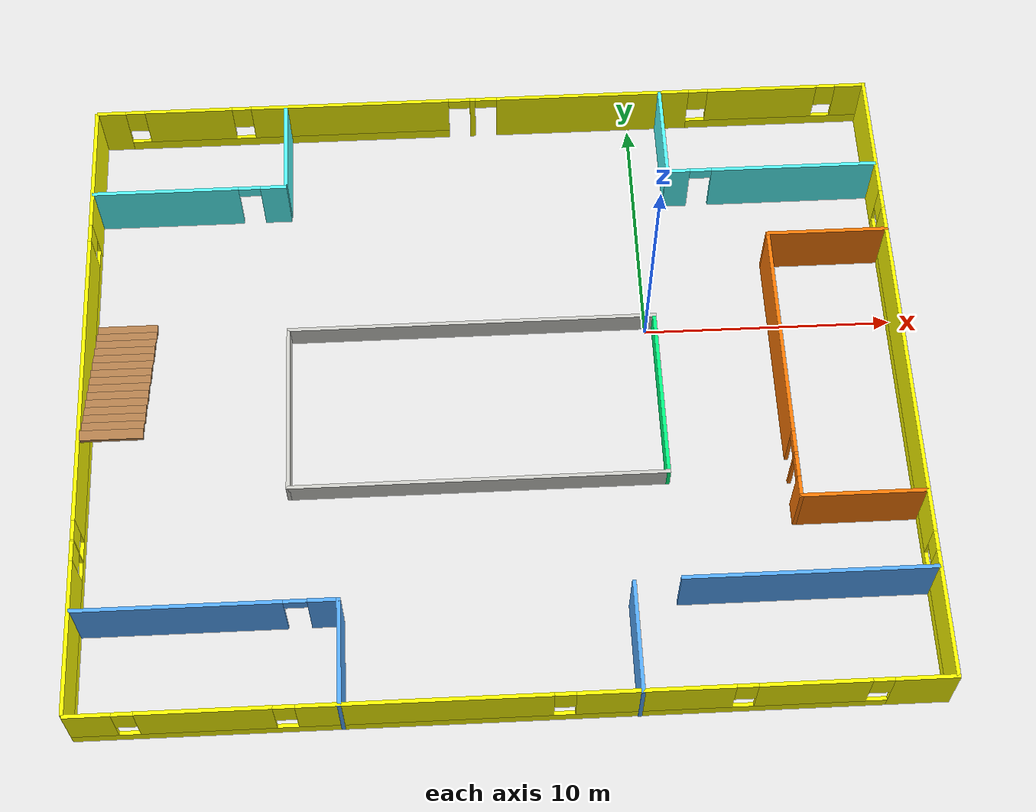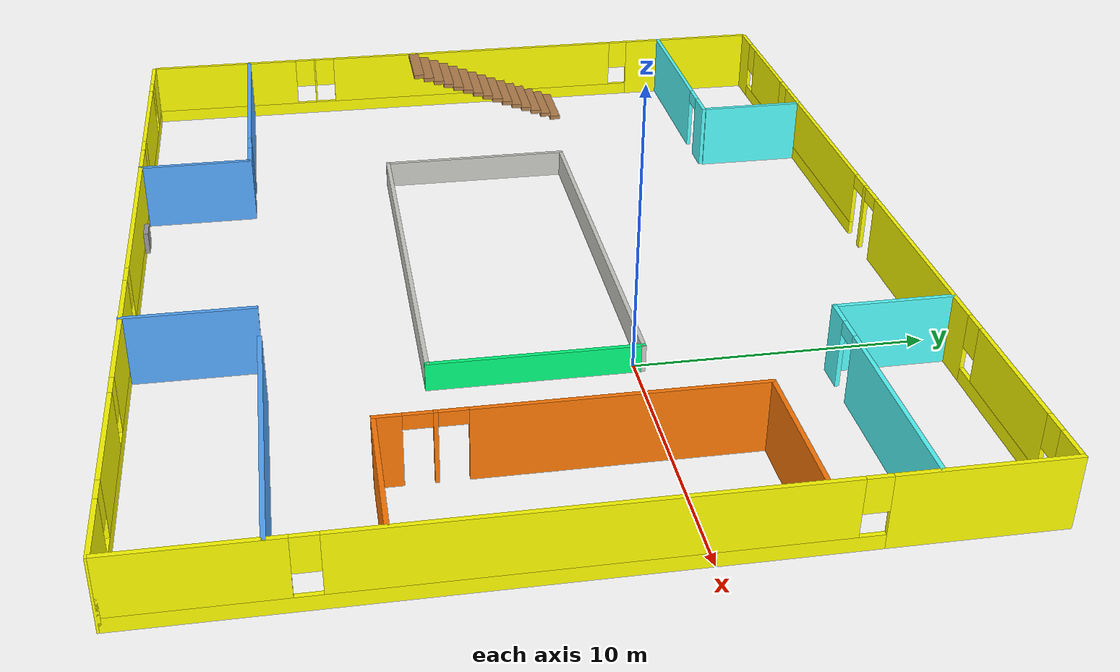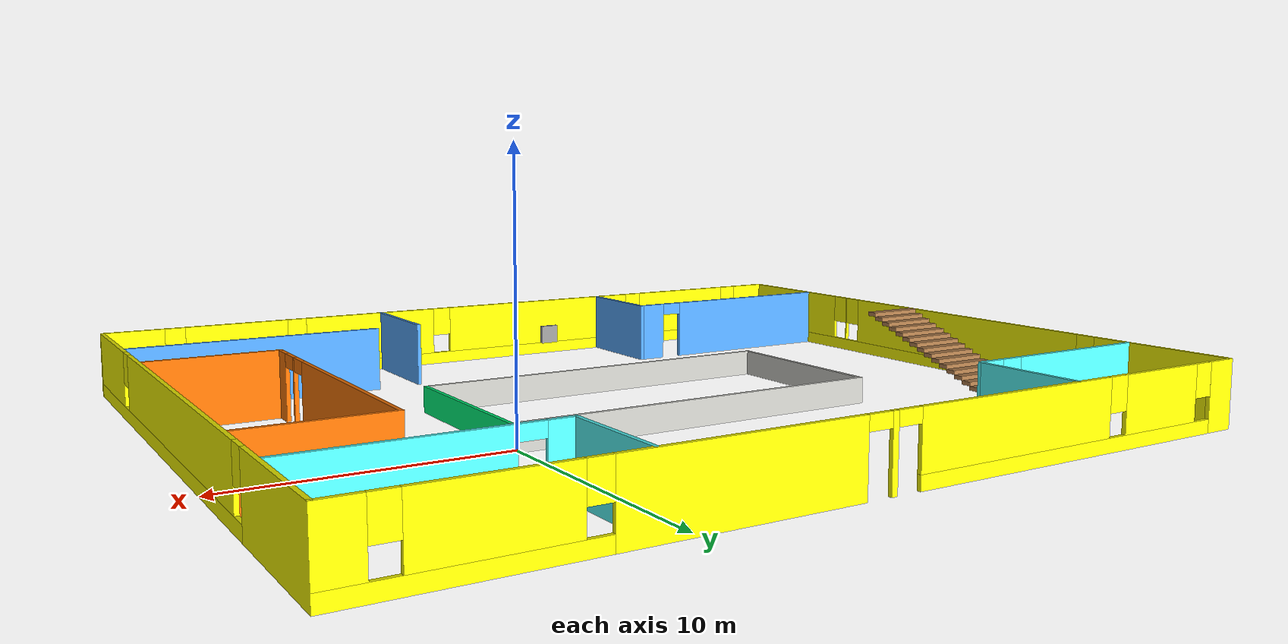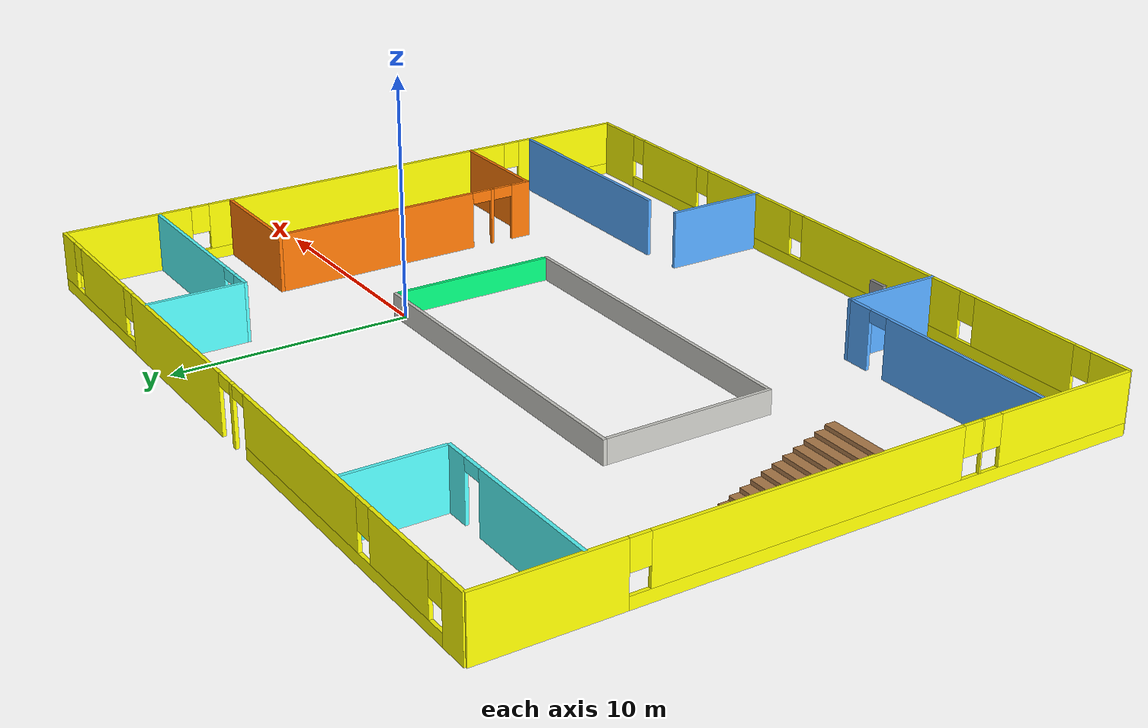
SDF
<?xml version='1.0'?>
<sdf version='1.6'>
  <model name='Building'>
    <pose frame=''>-6.26439 -3.05655 0 0 -0 0</pose>
    <link name='Stairs_0'>
      <visual name='Stairs_0_Visual_0'>
        <pose frame=''>-14.9313 4.06406 0.083333 0 -0 0</pose>
        <geometry>
          <box>
            <size>2.46916 0.429222 0.166667</size>
          </box>
        </geometry>
        <material>
          <script>
            <uri>file://media/materials/scripts/gazebo.material</uri>
            <name>Gazebo/Wood</name>
          </script>
          <ambient>1 1 1 1</ambient>
        </material>
        <meta>
          <layer>0</layer>
        </meta>
      </visual>
      <collision name='Stairs_0_Collision_0'>
        <geometry>
          <box>
            <size>2.46916 0.429222 0.166667</size>
          </box>
        </geometry>
        <pose frame=''>-14.9313 4.06406 0.083333 0 -0 0</pose>
      </collision>
      <visual name='Stairs_0_Visual_1'>
        <pose frame=''>-14.9313 3.63484 0.25 0 -0 0</pose>
        <geometry>
          <box>
            <size>2.46916 0.429222 0.166667</size>
          </box>
        </geometry>
        <material>
          <script>
            <uri>file://media/materials/scripts/gazebo.material</uri>
            <name>Gazebo/Wood</name>
          </script>
          <ambient>1 1 1 1</ambient>
        </material>
        <meta>
          <layer>0</layer>
        </meta>
      </visual>
      <collision name='Stairs_0_Collision_1'>
        <geometry>
          <box>
            <size>2.46916 0.429222 0.166667</size>
          </box>
        </geometry>
        <pose frame=''>-14.9313 3.63484 0.25 0 -0 0</pose>
      </collision>
      <visual name='Stairs_0_Visual_2'>
        <pose frame=''>-14.9313 3.20562 0.416667 0 -0 0</pose>
        <geometry>
          <box>
            <size>2.46916 0.429222 0.166667</size>
          </box>
        </geometry>
        <material>
          <script>
            <uri>file://media/materials/scripts/gazebo.material</uri>
            <name>Gazebo/Wood</name>
          </script>
          <ambient>1 1 1 1</ambient>
        </material>
        <meta>
          <layer>0</layer>
        </meta>
      </visual>
      <collision name='Stairs_0_Collision_2'>
        <geometry>
          <box>
            <size>2.46916 0.429222 0.166667</size>
          </box>
        </geometry>
        <pose frame=''>-14.9313 3.20562 0.416667 0 -0 0</pose>
      </collision>
      <visual name='Stairs_0_Visual_3'>
        <pose frame=''>-14.9313 2.7764 0.583333 0 -0 0</pose>
        <geometry>
          <box>
            <size>2.46916 0.429222 0.166667</size>
          </box>
        </geometry>
        <material>
          <script>
            <uri>file://media/materials/scripts/gazebo.material</uri>
            <name>Gazebo/Wood</name>
          </script>
          <ambient>1 1 1 1</ambient>
        </material>
        <meta>
          <layer>0</layer>
        </meta>
      </visual>
      <collision name='Stairs_0_Collision_3'>
        <geometry>
          <box>
            <size>2.46916 0.429222 0.166667</size>
          </box>
        </geometry>
        <pose frame=''>-14.9313 2.7764 0.583333 0 -0 0</pose>
      </collision>
      <visual name='Stairs_0_Visual_4'>
        <pose frame=''>-14.9313 2.34718 0.75 0 -0 0</pose>
        <geometry>
          <box>
            <size>2.46916 0.429222 0.166667</size>
          </box>
        </geometry>
        <material>
          <script>
            <uri>file://media/materials/scripts/gazebo.material</uri>
            <name>Gazebo/Wood</name>
          </script>
          <ambient>1 1 1 1</ambient>
        </material>
        <meta>
          <layer>0</layer>
        </meta>
      </visual>
      <collision name='Stairs_0_Collision_4'>
        <geometry>
          <box>
            <size>2.46916 0.429222 0.166667</size>
          </box>
        </geometry>
        <pose frame=''>-14.9313 2.34718 0.75 0 -0 0</pose>
      </collision>
      <visual name='Stairs_0_Visual_5'>
        <pose frame=''>-14.9313 1.91795 0.916667 0 -0 0</pose>
        <geometry>
          <box>
            <size>2.46916 0.429222 0.166667</size>
          </box>
        </geometry>
        <material>
          <script>
            <uri>file://media/materials/scripts/gazebo.material</uri>
            <name>Gazebo/Wood</name>
          </script>
          <ambient>1 1 1 1</ambient>
        </material>
        <meta>
          <layer>0</layer>
        </meta>
      </visual>
      <collision name='Stairs_0_Collision_5'>
        <geometry>
          <box>
            <size>2.46916 0.429222 0.166667</size>
          </box>
        </geometry>
        <pose frame=''>-14.9313 1.91795 0.916667 0 -0 0</pose>
      </collision>
      <visual name='Stairs_0_Visual_6'>
        <pose frame=''>-14.9313 1.48873 1.08333 0 -0 0</pose>
        <geometry>
          <box>
            <size>2.46916 0.429222 0.166667</size>
          </box>
        </geometry>
        <material>
          <script>
            <uri>file://media/materials/scripts/gazebo.material</uri>
            <name>Gazebo/Wood</name>
          </script>
          <ambient>1 1 1 1</ambient>
        </material>
        <meta>
          <layer>0</layer>
        </meta>
      </visual>
      <collision name='Stairs_0_Collision_6'>
        <geometry>
          <box>
            <size>2.46916 0.429222 0.166667</size>
          </box>
        </geometry>
        <pose frame=''>-14.9313 1.48873 1.08333 0 -0 0</pose>
      </collision>
      <visual name='Stairs_0_Visual_7'>
        <pose frame=''>-14.9313 1.05951 1.25 0 -0 0</pose>
        <geometry>
          <box>
            <size>2.46916 0.429222 0.166667</size>
          </box>
        </geometry>
        <material>
          <script>
            <uri>file://media/materials/scripts/gazebo.material</uri>
            <name>Gazebo/Wood</name>
          </script>
          <ambient>1 1 1 1</ambient>
        </material>
        <meta>
          <layer>0</layer>
        </meta>
      </visual>
      <collision name='Stairs_0_Collision_7'>
        <geometry>
          <box>
            <size>2.46916 0.429222 0.166667</size>
          </box>
        </geometry>
        <pose frame=''>-14.9313 1.05951 1.25 0 -0 0</pose>
      </collision>
      <visual name='Stairs_0_Visual_8'>
        <pose frame=''>-14.9313 0.630288 1.41667 0 -0 0</pose>
        <geometry>
          <box>
            <size>2.46916 0.429222 0.166667</size>
          </box>
        </geometry>
        <material>
          <script>
            <uri>file://media/materials/scripts/gazebo.material</uri>
            <name>Gazebo/Wood</name>
          </script>
          <ambient>1 1 1 1</ambient>
        </material>
        <meta>
          <layer>0</layer>
        </meta>
      </visual>
      <collision name='Stairs_0_Collision_8'>
        <geometry>
          <box>
            <size>2.46916 0.429222 0.166667</size>
          </box>
        </geometry>
        <pose frame=''>-14.9313 0.630288 1.41667 0 -0 0</pose>
      </collision>
      <visual name='Stairs_0_Visual_9'>
        <pose frame=''>-14.9313 0.201066 1.58333 0 -0 0</pose>
        <geometry>
          <box>
            <size>2.46916 0.429222 0.166667</size>
          </box>
        </geometry>
        <material>
          <script>
            <uri>file://media/materials/scripts/gazebo.material</uri>
            <name>Gazebo/Wood</name>
          </script>
          <ambient>1 1 1 1</ambient>
        </material>
        <meta>
          <layer>0</layer>
        </meta>
      </visual>
      <collision name='Stairs_0_Collision_9'>
        <geometry>
          <box>
            <size>2.46916 0.429222 0.166667</size>
          </box>
        </geometry>
        <pose frame=''>-14.9313 0.201066 1.58333 0 -0 0</pose>
      </collision>
      <visual name='Stairs_0_Visual_10'>
        <pose frame=''>-14.9313 -0.228156 1.75 0 -0 0</pose>
        <geometry>
          <box>
            <size>2.46916 0.429222 0.166667</size>
          </box>
        </geometry>
        <material>
          <script>
            <uri>file://media/materials/scripts/gazebo.material</uri>
            <name>Gazebo/Wood</name>
          </script>
          <ambient>1 1 1 1</ambient>
        </material>
        <meta>
          <layer>0</layer>
        </meta>
      </visual>
      <collision name='Stairs_0_Collision_10'>
        <geometry>
          <box>
            <size>2.46916 0.429222 0.166667</size>
          </box>
        </geometry>
        <pose frame=''>-14.9313 -0.228156 1.75 0 -0 0</pose>
      </collision>
      <visual name='Stairs_0_Visual_11'>
        <pose frame=''>-14.9313 -0.657378 1.91667 0 -0 0</pose>
        <geometry>
          <box>
            <size>2.46916 0.429222 0.166667</size>
          </box>
        </geometry>
        <material>
          <script>
            <uri>file://media/materials/scripts/gazebo.material</uri>
            <name>Gazebo/Wood</name>
          </script>
          <ambient>1 1 1 1</ambient>
        </material>
        <meta>
          <layer>0</layer>
        </meta>
      </visual>
      <collision name='Stairs_0_Collision_11'>
        <geometry>
          <box>
            <size>2.46916 0.429222 0.166667</size>
          </box>
        </geometry>
        <pose frame=''>-14.9313 -0.657378 1.91667 0 -0 0</pose>
      </collision>
      <visual name='Stairs_0_Visual_12'>
        <pose frame=''>-14.9313 -1.0866 2.08333 0 -0 0</pose>
        <geometry>
          <box>
            <size>2.46916 0.429222 0.166667</size>
          </box>
        </geometry>
        <material>
          <script>
            <uri>file://media/materials/scripts/gazebo.material</uri>
            <name>Gazebo/Wood</name>
          </script>
          <ambient>1 1 1 1</ambient>
        </material>
        <meta>
          <layer>0</layer>
        </meta>
      </visual>
      <collision name='Stairs_0_Collision_12'>
        <geometry>
          <box>
            <size>2.46916 0.429222 0.166667</size>
          </box>
        </geometry>
        <pose frame=''>-14.9313 -1.0866 2.08333 0 -0 0</pose>
      </collision>
      <visual name='Stairs_0_Visual_13'>
        <pose frame=''>-14.9313 -1.51582 2.25 0 -0 0</pose>
        <geometry>
          <box>
            <size>2.46916 0.429222 0.166667</size>
          </box>
        </geometry>
        <material>
          <script>
            <uri>file://media/materials/scripts/gazebo.material</uri>
            <name>Gazebo/Wood</name>
          </script>
          <ambient>1 1 1 1</ambient>
        </material>
        <meta>
          <layer>0</layer>
        </meta>
      </visual>
      <collision name='Stairs_0_Collision_13'>
        <geometry>
          <box>
            <size>2.46916 0.429222 0.166667</size>
          </box>
        </geometry>
        <pose frame=''>-14.9313 -1.51582 2.25 0 -0 0</pose>
      </collision>
      <visual name='Stairs_0_Visual_14'>
        <pose frame=''>-14.9313 -1.94504 2.41667 0 -0 0</pose>
        <geometry>
          <box>
            <size>2.46916 0.429222 0.166667</size>
          </box>
        </geometry>
        <material>
          <script>
            <uri>file://media/materials/scripts/gazebo.material</uri>
            <name>Gazebo/Wood</name>
          </script>
          <ambient>1 1 1 1</ambient>
        </material>
        <meta>
          <layer>0</layer>
        </meta>
      </visual>
      <collision name='Stairs_0_Collision_14'>
        <geometry>
          <box>
            <size>2.46916 0.429222 0.166667</size>
          </box>
        </geometry>
        <pose frame=''>-14.9313 -1.94504 2.41667 0 -0 0</pose>
      </collision>
    </link>
    <link name='Wall_10'>
      <pose frame=''>16.2097 0.046716 0 0 0 -1.5708</pose>
      <visual name='Wall_10_Visual_0'>
        <pose frame=''>-10.6026 0 1.25 0 -0 0</pose>
        <geometry>
          <box>
            <size>5.53147 0.15 2.5</size>
          </box>
        </geometry>
        <material>
          <script>
            <uri>file://media/materials/scripts/gazebo.material</uri>
            <name>Gazebo/Grey</name>
          </script>
          <ambient>1 1 0 1</ambient>
        </material>
        <meta>
          <layer>0</layer>
        </meta>
      </visual>
      <collision name='Wall_10_Collision_0'>
        <geometry>
          <box>
            <size>5.53147 0.15 2.5</size>
          </box>
        </geometry>
        <pose frame=''>-10.6026 0 1.25 0 -0 0</pose>
      </collision>
      <visual name='Wall_10_Visual_1'>
        <pose frame=''>2.76573 0 0.25 0 -0 0</pose>
        <geometry>
          <box>
            <size>21.2052 0.15 0.5</size>
          </box>
        </geometry>
        <material>
          <script>
            <uri>file://media/materials/scripts/gazebo.material</uri>
            <name>Gazebo/Grey</name>
          </script>
          <ambient>1 1 0 1</ambient>
        </material>
        <meta>
          <layer>0</layer>
        </meta>
      </visual>
      <collision name='Wall_10_Collision_1'>
        <geometry>
          <box>
            <size>21.2052 0.15 0.5</size>
          </box>
        </geometry>
        <pose frame=''>2.76573 0 0.25 0 -0 0</pose>
      </collision>
      <visual name='Wall_10_Visual_2'>
        <pose frame=''>0.267429 0 1.5 0 -0 0</pose>
        <geometry>
          <box>
            <size>14.6086 0.15 2</size>
          </box>
        </geometry>
        <material>
          <script>
            <uri>file://media/materials/scripts/gazebo.material</uri>
            <name>Gazebo/Grey</name>
          </script>
          <ambient>1 1 0 1</ambient>
        </material>
        <meta>
          <layer>0</layer>
        </meta>
      </visual>
      <collision name='Wall_10_Collision_2'>
        <geometry>
          <box>
            <size>14.6086 0.15 2</size>
          </box>
        </geometry>
        <pose frame=''>0.267429 0 1.5 0 -0 0</pose>
      </collision>
      <visual name='Wall_10_Visual_3'>
        <pose frame=''>10.87 0 1.5 0 -0 0</pose>
        <geometry>
          <box>
            <size>4.99661 0.15 2</size>
          </box>
        </geometry>
        <material>
          <script>
            <uri>file://media/materials/scripts/gazebo.material</uri>
            <name>Gazebo/Grey</name>
          </script>
          <ambient>1 1 0 1</ambient>
        </material>
        <meta>
          <layer>0</layer>
        </meta>
      </visual>
      <collision name='Wall_10_Collision_3'>
        <geometry>
          <box>
            <size>4.99661 0.15 2</size>
          </box>
        </geometry>
        <pose frame=''>10.87 0 1.5 0 -0 0</pose>
      </collision>
      <visual name='Wall_10_Visual_4'>
        <pose frame=''>-7.43688 0 1.9 0 -0 0</pose>
        <geometry>
          <box>
            <size>0.8 0.15 1.2</size>
          </box>
        </geometry>
        <material>
          <script>
            <uri>file://media/materials/scripts/gazebo.material</uri>
            <name>Gazebo/Grey</name>
          </script>
          <ambient>1 1 0 1</ambient>
        </material>
        <meta>
          <layer>0</layer>
        </meta>
      </visual>
      <collision name='Wall_10_Collision_4'>
        <geometry>
          <box>
            <size>0.8 0.15 1.2</size>
          </box>
        </geometry>
        <pose frame=''>-7.43688 0 1.9 0 -0 0</pose>
      </collision>
      <visual name='Wall_10_Visual_5'>
        <pose frame=''>7.97173 0 1.9 0 -0 0</pose>
        <geometry>
          <box>
            <size>0.8 0.15 1.2</size>
          </box>
        </geometry>
        <material>
          <script>
            <uri>file://media/materials/scripts/gazebo.material</uri>
            <name>Gazebo/Grey</name>
          </script>
          <ambient>1 1 0 1</ambient>
        </material>
        <meta>
          <layer>0</layer>
        </meta>
      </visual>
      <collision name='Wall_10_Collision_5'>
        <geometry>
          <box>
            <size>0.8 0.15 1.2</size>
          </box>
        </geometry>
        <pose frame=''>7.97173 0 1.9 0 -0 0</pose>
      </collision>
    </link>
    <link name='Wall_11'>
      <pose frame=''>0.034696 -13.316 0 0 -0 3.14159</pose>
      <visual name='Wall_11_Visual_0'>
        <pose frame=''>-15.0547 0 1.25 0 -0 0</pose>
        <geometry>
          <box>
            <size>2.39051 0.15 2.5</size>
          </box>
        </geometry>
        <material>
          <script>
            <uri>file://media/materials/scripts/gazebo.material</uri>
            <name>Gazebo/Grey</name>
          </script>
          <ambient>1 1 0 1</ambient>
        </material>
        <meta>
          <layer>0</layer>
        </meta>
      </visual>
      <collision name='Wall_11_Collision_0'>
        <geometry>
          <box>
            <size>2.39051 0.15 2.5</size>
          </box>
        </geometry>
        <pose frame=''>-15.0547 0 1.25 0 -0 0</pose>
      </collision>
      <visual name='Wall_11_Visual_1'>
        <pose frame=''>1.19526 0 0.25 0 -0 0</pose>
        <geometry>
          <box>
            <size>30.1095 0.15 0.5</size>
          </box>
        </geometry>
        <material>
          <script>
            <uri>file://media/materials/scripts/gazebo.material</uri>
            <name>Gazebo/Grey</name>
          </script>
          <ambient>1 1 0 1</ambient>
        </material>
        <meta>
          <layer>0</layer>
        </meta>
      </visual>
      <collision name='Wall_11_Collision_1'>
        <geometry>
          <box>
            <size>30.1095 0.15 0.5</size>
          </box>
        </geometry>
        <pose frame=''>1.19526 0 0.25 0 -0 0</pose>
      </collision>
      <visual name='Wall_11_Visual_2'>
        <pose frame=''>-10.9794 0 1.5 0 -0 0</pose>
        <geometry>
          <box>
            <size>4.16021 0.15 2</size>
          </box>
        </geometry>
        <material>
          <script>
            <uri>file://media/materials/scripts/gazebo.material</uri>
            <name>Gazebo/Grey</name>
          </script>
          <ambient>1 1 0 1</ambient>
        </material>
        <meta>
          <layer>0</layer>
        </meta>
      </visual>
      <collision name='Wall_11_Collision_2'>
        <geometry>
          <box>
            <size>4.16021 0.15 2</size>
          </box>
        </geometry>
        <pose frame=''>-10.9794 0 1.5 0 -0 0</pose>
      </collision>
      <visual name='Wall_11_Visual_3'>
        <pose frame=''>-5.20049 0 1.5 0 -0 0</pose>
        <geometry>
          <box>
            <size>5.79758 0.15 2</size>
          </box>
        </geometry>
        <material>
          <script>
            <uri>file://media/materials/scripts/gazebo.material</uri>
            <name>Gazebo/Grey</name>
          </script>
          <ambient>1 1 0 1</ambient>
        </material>
        <meta>
          <layer>0</layer>
        </meta>
      </visual>
      <collision name='Wall_11_Collision_3'>
        <geometry>
          <box>
            <size>5.79758 0.15 2</size>
          </box>
        </geometry>
        <pose frame=''>-5.20049 0 1.5 0 -0 0</pose>
      </collision>
      <visual name='Wall_11_Visual_4'>
        <pose frame=''>3.18964 0 1.5 0 -0 0</pose>
        <geometry>
          <box>
            <size>9.38269 0.15 2</size>
          </box>
        </geometry>
        <material>
          <script>
            <uri>file://media/materials/scripts/gazebo.material</uri>
            <name>Gazebo/Grey</name>
          </script>
          <ambient>1 1 0 1</ambient>
        </material>
        <meta>
          <layer>0</layer>
        </meta>
      </visual>
      <collision name='Wall_11_Collision_4'>
        <geometry>
          <box>
            <size>9.38269 0.15 2</size>
          </box>
        </geometry>
        <pose frame=''>3.18964 0 1.5 0 -0 0</pose>
      </collision>
      <visual name='Wall_11_Visual_5'>
        <pose frame=''>11.1832 0 1.5 0 -0 0</pose>
        <geometry>
          <box>
            <size>5.0045 0.15 2</size>
          </box>
        </geometry>
        <material>
          <script>
            <uri>file://media/materials/scripts/gazebo.material</uri>
            <name>Gazebo/Grey</name>
          </script>
          <ambient>1 1 0 1</ambient>
        </material>
        <meta>
          <layer>0</layer>
        </meta>
      </visual>
      <collision name='Wall_11_Collision_5'>
        <geometry>
          <box>
            <size>5.0045 0.15 2</size>
          </box>
        </geometry>
        <pose frame=''>11.1832 0 1.5 0 -0 0</pose>
      </collision>
      <visual name='Wall_11_Visual_6'>
        <pose frame=''>15.3677 0 1.5 0 -0 0</pose>
        <geometry>
          <box>
            <size>1.76452 0.15 2</size>
          </box>
        </geometry>
        <material>
          <script>
            <uri>file://media/materials/scripts/gazebo.material</uri>
            <name>Gazebo/Grey</name>
          </script>
          <ambient>1 1 0 1</ambient>
        </material>
        <meta>
          <layer>0</layer>
        </meta>
      </visual>
      <collision name='Wall_11_Collision_6'>
        <geometry>
          <box>
            <size>1.76452 0.15 2</size>
          </box>
        </geometry>
        <pose frame=''>15.3677 0 1.5 0 -0 0</pose>
      </collision>
      <visual name='Wall_11_Visual_7'>
        <pose frame=''>-13.4595 0 1.9 0 -0 0</pose>
        <geometry>
          <box>
            <size>0.8 0.15 1.2</size>
          </box>
        </geometry>
        <material>
          <script>
            <uri>file://media/materials/scripts/gazebo.material</uri>
            <name>Gazebo/Grey</name>
          </script>
          <ambient>1 1 0 1</ambient>
        </material>
        <meta>
          <layer>0</layer>
        </meta>
      </visual>
      <collision name='Wall_11_Collision_7'>
        <geometry>
          <box>
            <size>0.8 0.15 1.2</size>
          </box>
        </geometry>
        <pose frame=''>-13.4595 0 1.9 0 -0 0</pose>
      </collision>
      <visual name='Wall_11_Visual_8'>
        <pose frame=''>-8.49928 0 1.9 0 -0 0</pose>
        <geometry>
          <box>
            <size>0.8 0.15 1.2</size>
          </box>
        </geometry>
        <material>
          <script>
            <uri>file://media/materials/scripts/gazebo.material</uri>
            <name>Gazebo/Grey</name>
          </script>
          <ambient>1 1 0 1</ambient>
        </material>
        <meta>
          <layer>0</layer>
        </meta>
      </visual>
      <collision name='Wall_11_Collision_8'>
        <geometry>
          <box>
            <size>0.8 0.15 1.2</size>
          </box>
        </geometry>
        <pose frame=''>-8.49928 0 1.9 0 -0 0</pose>
      </collision>
      <visual name='Wall_11_Visual_9'>
        <pose frame=''>-1.9017 0 1.9 0 -0 0</pose>
        <geometry>
          <box>
            <size>0.8 0.15 1.2</size>
          </box>
        </geometry>
        <material>
          <script>
            <uri>file://media/materials/scripts/gazebo.material</uri>
            <name>Gazebo/Grey</name>
          </script>
          <ambient>1 1 0 1</ambient>
        </material>
        <meta>
          <layer>0</layer>
        </meta>
      </visual>
      <collision name='Wall_11_Collision_9'>
        <geometry>
          <box>
            <size>0.8 0.15 1.2</size>
          </box>
        </geometry>
        <pose frame=''>-1.9017 0 1.9 0 -0 0</pose>
      </collision>
      <visual name='Wall_11_Visual_10'>
        <pose frame=''>8.28099 0 1.9 0 -0 0</pose>
        <geometry>
          <box>
            <size>0.8 0.15 1.2</size>
          </box>
        </geometry>
        <material>
          <script>
            <uri>file://media/materials/scripts/gazebo.material</uri>
            <name>Gazebo/Grey</name>
          </script>
          <ambient>1 1 0 1</ambient>
        </material>
        <meta>
          <layer>0</layer>
        </meta>
      </visual>
      <collision name='Wall_11_Collision_10'>
        <geometry>
          <box>
            <size>0.8 0.15 1.2</size>
          </box>
        </geometry>
        <pose frame=''>8.28099 0 1.9 0 -0 0</pose>
      </collision>
      <visual name='Wall_11_Visual_11'>
        <pose frame=''>14.0855 0 1.9 0 -0 0</pose>
        <geometry>
          <box>
            <size>0.8 0.15 1.2</size>
          </box>
        </geometry>
        <material>
          <script>
            <uri>file://media/materials/scripts/gazebo.material</uri>
            <name>Gazebo/Grey</name>
          </script>
          <ambient>1 1 0 1</ambient>
        </material>
        <meta>
          <layer>0</layer>
        </meta>
      </visual>
      <collision name='Wall_11_Collision_11'>
        <geometry>
          <box>
            <size>0.8 0.15 1.2</size>
          </box>
        </geometry>
        <pose frame=''>14.0855 0 1.9 0 -0 0</pose>
      </collision>
    </link>
    <link name='Wall_14'>
      <pose frame=''>-12.2328 9.27765 0 0 -0 3.14159</pose>
      <visual name='Wall_14_Visual_0'>
        <pose frame=''>-3.45928 0 1.25 0 -0 0</pose>
        <geometry>
          <box>
            <size>1.08144 0.15 2.5</size>
          </box>
        </geometry>
        <material>
          <script>
            <uri>file://media/materials/scripts/gazebo.material</uri>
            <name>Gazebo/Grey</name>
          </script>
          <ambient>0.333333 1 1 1</ambient>
        </material>
        <meta>
          <layer>0</layer>
        </meta>
      </visual>
      <collision name='Wall_14_Collision_0'>
        <geometry>
          <box>
            <size>1.08144 0.15 2.5</size>
          </box>
        </geometry>
        <pose frame=''>-3.45928 0 1.25 0 -0 0</pose>
      </collision>
      <visual name='Wall_14_Visual_1'>
        <pose frame=''>0.990722 0 1.25 0 -0 0</pose>
        <geometry>
          <box>
            <size>6.01856 0.15 2.5</size>
          </box>
        </geometry>
        <material>
          <script>
            <uri>file://media/materials/scripts/gazebo.material</uri>
            <name>Gazebo/Grey</name>
          </script>
          <ambient>0.333333 1 1 1</ambient>
        </material>
        <meta>
          <layer>0</layer>
        </meta>
      </visual>
      <collision name='Wall_14_Collision_1'>
        <geometry>
          <box>
            <size>6.01856 0.15 2.5</size>
          </box>
        </geometry>
        <pose frame=''>0.990722 0 1.25 0 -0 0</pose>
      </collision>
      <visual name='Wall_14_Visual_2'>
        <pose frame=''>-2.46855 0 2.25 0 -0 0</pose>
        <geometry>
          <box>
            <size>0.9 0.15 0.5</size>
          </box>
        </geometry>
        <material>
          <script>
            <uri>file://media/materials/scripts/gazebo.material</uri>
            <name>Gazebo/Grey</name>
          </script>
          <ambient>0.333333 1 1 1</ambient>
        </material>
        <meta>
          <layer>0</layer>
        </meta>
      </visual>
      <collision name='Wall_14_Collision_2'>
        <geometry>
          <box>
            <size>0.9 0.15 0.5</size>
          </box>
        </geometry>
        <pose frame=''>-2.46855 0 2.25 0 -0 0</pose>
      </collision>
    </link>
    <link name='Wall_16'>
      <collision name='Wall_16_Collision'>
        <geometry>
          <box>
            <size>4 0.15 2.5</size>
          </box>
        </geometry>
        <pose frame=''>0 0 1.25 0 -0 0</pose>
      </collision>
      <visual name='Wall_16_Visual'>
        <pose frame=''>0 0 1.25 0 -0 0</pose>
        <geometry>
          <box>
            <size>4 0.15 2.5</size>
          </box>
        </geometry>
        <material>
          <script>
            <uri>file://media/materials/scripts/gazebo.material</uri>
            <name>Gazebo/Grey</name>
          </script>
          <ambient>0.333333 1 1 1</ambient>
        </material>
        <meta>
          <layer>0</layer>
        </meta>
      </visual>
      <pose frame=''>-8.26763 11.3601 0 0 0 -1.5708</pose>
    </link>
    <link name='Wall_18'>
      <collision name='Wall_18_Collision'>
        <geometry>
          <box>
            <size>4.09182 0.15 2.5</size>
          </box>
        </geometry>
        <pose frame=''>0 0 1.25 0 -0 0</pose>
      </collision>
      <visual name='Wall_18_Visual'>
        <pose frame=''>0 0 1.25 0 -0 0</pose>
        <geometry>
          <box>
            <size>4.09182 0.15 2.5</size>
          </box>
        </geometry>
        <material>
          <script>
            <uri>file://media/materials/scripts/gazebo.material</uri>
            <name>Gazebo/Grey</name>
          </script>
          <ambient>0.333333 1 1 1</ambient>
        </material>
        <meta>
          <layer>0</layer>
        </meta>
      </visual>
      <pose frame=''>7.53205 11.3142 0 0 0 -1.56767</pose>
    </link>
    <link name='Wall_19'>
      <pose frame=''>11.8382 9.29079 0 0 -0 0</pose>
      <visual name='Wall_19_Visual_0'>
        <pose frame=''>-3.87703 0 1.25 0 -0 0</pose>
        <geometry>
          <box>
            <size>0.995946 0.15 2.5</size>
          </box>
        </geometry>
        <material>
          <script>
            <uri>file://media/materials/scripts/gazebo.material</uri>
            <name>Gazebo/Grey</name>
          </script>
          <ambient>0.333333 1 1 1</ambient>
        </material>
        <meta>
          <layer>0</layer>
        </meta>
      </visual>
      <collision name='Wall_19_Collision_0'>
        <geometry>
          <box>
            <size>0.995946 0.15 2.5</size>
          </box>
        </geometry>
        <pose frame=''>-3.87703 0 1.25 0 -0 0</pose>
      </collision>
      <visual name='Wall_19_Visual_1'>
        <pose frame=''>0.947973 0 1.25 0 -0 0</pose>
        <geometry>
          <box>
            <size>6.85405 0.15 2.5</size>
          </box>
        </geometry>
        <material>
          <script>
            <uri>file://media/materials/scripts/gazebo.material</uri>
            <name>Gazebo/Grey</name>
          </script>
          <ambient>0.333333 1 1 1</ambient>
        </material>
        <meta>
          <layer>0</layer>
        </meta>
      </visual>
      <collision name='Wall_19_Collision_1'>
        <geometry>
          <box>
            <size>6.85405 0.15 2.5</size>
          </box>
        </geometry>
        <pose frame=''>0.947973 0 1.25 0 -0 0</pose>
      </collision>
      <visual name='Wall_19_Visual_2'>
        <pose frame=''>-2.92905 0 2.25 0 -0 0</pose>
        <geometry>
          <box>
            <size>0.9 0.15 0.5</size>
          </box>
        </geometry>
        <material>
          <script>
            <uri>file://media/materials/scripts/gazebo.material</uri>
            <name>Gazebo/Grey</name>
          </script>
          <ambient>0.333333 1 1 1</ambient>
        </material>
        <meta>
          <layer>0</layer>
        </meta>
      </visual>
      <collision name='Wall_19_Collision_2'>
        <geometry>
          <box>
            <size>0.9 0.15 0.5</size>
          </box>
        </geometry>
        <pose frame=''>-2.92905 0 2.25 0 -0 0</pose>
      </collision>
    </link>
    <link name='Wall_2'>
      <pose frame=''>0.034696 13.3401 0 0 -0 0</pose>
      <visual name='Wall_2_Visual_0'>
        <pose frame=''>-15.6475 0 1.25 0 -0 0</pose>
        <geometry>
          <box>
            <size>1.20506 0.15 2.5</size>
          </box>
        </geometry>
        <material>
          <script>
            <uri>file://media/materials/scripts/gazebo.material</uri>
            <name>Gazebo/Grey</name>
          </script>
          <ambient>1 1 0 1</ambient>
        </material>
        <meta>
          <layer>0</layer>
        </meta>
      </visual>
      <collision name='Wall_2_Collision_0'>
        <geometry>
          <box>
            <size>1.20506 0.15 2.5</size>
          </box>
        </geometry>
        <pose frame=''>-15.6475 0 1.25 0 -0 0</pose>
      </collision>
      <visual name='Wall_2_Visual_1'>
        <pose frame=''>-0.435972 0 1.25 0 -0 0</pose>
        <geometry>
          <box>
            <size>0.223552 0.15 2.5</size>
          </box>
        </geometry>
        <material>
          <script>
            <uri>file://media/materials/scripts/gazebo.material</uri>
            <name>Gazebo/Grey</name>
          </script>
          <ambient>1 1 0 1</ambient>
        </material>
        <meta>
          <layer>0</layer>
        </meta>
      </visual>
      <collision name='Wall_2_Collision_1'>
        <geometry>
          <box>
            <size>0.223552 0.15 2.5</size>
          </box>
        </geometry>
        <pose frame=''>-0.435972 0 1.25 0 -0 0</pose>
      </collision>
      <visual name='Wall_2_Visual_2'>
        <pose frame=''>4.65572 0 1.25 0 -0 0</pose>
        <geometry>
          <box>
            <size>8.15983 0.15 2.5</size>
          </box>
        </geometry>
        <material>
          <script>
            <uri>file://media/materials/scripts/gazebo.material</uri>
            <name>Gazebo/Grey</name>
          </script>
          <ambient>1 1 0 1</ambient>
        </material>
        <meta>
          <layer>0</layer>
        </meta>
      </visual>
      <collision name='Wall_2_Collision_2'>
        <geometry>
          <box>
            <size>8.15983 0.15 2.5</size>
          </box>
        </geometry>
        <pose frame=''>4.65572 0 1.25 0 -0 0</pose>
      </collision>
      <visual name='Wall_2_Visual_3'>
        <pose frame=''>-8.24634 0 0.25 0 -0 0</pose>
        <geometry>
          <box>
            <size>13.5972 0.15 0.5</size>
          </box>
        </geometry>
        <material>
          <script>
            <uri>file://media/materials/scripts/gazebo.material</uri>
            <name>Gazebo/Grey</name>
          </script>
          <ambient>1 1 0 1</ambient>
        </material>
        <meta>
          <layer>0</layer>
        </meta>
      </visual>
      <collision name='Wall_2_Collision_3'>
        <geometry>
          <box>
            <size>13.5972 0.15 0.5</size>
          </box>
        </geometry>
        <pose frame=''>-8.24634 0 0.25 0 -0 0</pose>
      </collision>
      <visual name='Wall_2_Visual_4'>
        <pose frame=''>12.4928 0 0.25 0 -0 0</pose>
        <geometry>
          <box>
            <size>7.51436 0.15 0.5</size>
          </box>
        </geometry>
        <material>
          <script>
            <uri>file://media/materials/scripts/gazebo.material</uri>
            <name>Gazebo/Grey</name>
          </script>
          <ambient>1 1 0 1</ambient>
        </material>
        <meta>
          <layer>0</layer>
        </meta>
      </visual>
      <collision name='Wall_2_Collision_4'>
        <geometry>
          <box>
            <size>7.51436 0.15 0.5</size>
          </box>
        </geometry>
        <pose frame=''>12.4928 0 0.25 0 -0 0</pose>
      </collision>
      <visual name='Wall_2_Visual_5'>
        <pose frame=''>-12.4105 0 1.5 0 -0 0</pose>
        <geometry>
          <box>
            <size>3.66883 0.15 2</size>
          </box>
        </geometry>
        <material>
          <script>
            <uri>file://media/materials/scripts/gazebo.material</uri>
            <name>Gazebo/Grey</name>
          </script>
          <ambient>1 1 0 1</ambient>
        </material>
        <meta>
          <layer>0</layer>
        </meta>
      </visual>
      <collision name='Wall_2_Collision_5'>
        <geometry>
          <box>
            <size>3.66883 0.15 2</size>
          </box>
        </geometry>
        <pose frame=''>-12.4105 0 1.5 0 -0 0</pose>
      </collision>
      <visual name='Wall_2_Visual_6'>
        <pose frame=''>-5.61193 0 1.5 0 -0 0</pose>
        <geometry>
          <box>
            <size>8.32836 0.15 2</size>
          </box>
        </geometry>
        <material>
          <script>
            <uri>file://media/materials/scripts/gazebo.material</uri>
            <name>Gazebo/Grey</name>
          </script>
          <ambient>1 1 0 1</ambient>
        </material>
        <meta>
          <layer>0</layer>
        </meta>
      </visual>
      <collision name='Wall_2_Collision_6'>
        <geometry>
          <box>
            <size>8.32836 0.15 2</size>
          </box>
        </geometry>
        <pose frame=''>-5.61193 0 1.5 0 -0 0</pose>
      </collision>
      <visual name='Wall_2_Visual_7'>
        <pose frame=''>-5.61193 0 1.5 0 -0 0</pose>
        <geometry>
          <box>
            <size>8.32836 0.15 2</size>
          </box>
        </geometry>
        <material>
          <script>
            <uri>file://media/materials/scripts/gazebo.material</uri>
            <name>Gazebo/Grey</name>
          </script>
          <ambient>1 1 0 1</ambient>
        </material>
        <meta>
          <layer>0</layer>
        </meta>
      </visual>
      <collision name='Wall_2_Collision_7'>
        <geometry>
          <box>
            <size>8.32836 0.15 2</size>
          </box>
        </geometry>
        <pose frame=''>-5.61193 0 1.5 0 -0 0</pose>
      </collision>
      <visual name='Wall_2_Visual_8'>
        <pose frame=''>11.8489 0 1.5 0 -0 0</pose>
        <geometry>
          <box>
            <size>4.62644 0.15 2</size>
          </box>
        </geometry>
        <material>
          <script>
            <uri>file://media/materials/scripts/gazebo.material</uri>
            <name>Gazebo/Grey</name>
          </script>
          <ambient>1 1 0 1</ambient>
        </material>
        <meta>
          <layer>0</layer>
        </meta>
      </visual>
      <collision name='Wall_2_Collision_8'>
        <geometry>
          <box>
            <size>4.62644 0.15 2</size>
          </box>
        </geometry>
        <pose frame=''>11.8489 0 1.5 0 -0 0</pose>
      </collision>
      <visual name='Wall_2_Visual_9'>
        <pose frame=''>15.606 0 1.5 0 -0 0</pose>
        <geometry>
          <box>
            <size>1.28792 0.15 2</size>
          </box>
        </geometry>
        <material>
          <script>
            <uri>file://media/materials/scripts/gazebo.material</uri>
            <name>Gazebo/Grey</name>
          </script>
          <ambient>1 1 0 1</ambient>
        </material>
        <meta>
          <layer>0</layer>
        </meta>
      </visual>
      <collision name='Wall_2_Collision_9'>
        <geometry>
          <box>
            <size>1.28792 0.15 2</size>
          </box>
        </geometry>
        <pose frame=''>15.606 0 1.5 0 -0 0</pose>
      </collision>
      <visual name='Wall_2_Visual_10'>
        <pose frame=''>-14.6449 0 1.9 0 -0 0</pose>
        <geometry>
          <box>
            <size>0.8 0.15 1.2</size>
          </box>
        </geometry>
        <material>
          <script>
            <uri>file://media/materials/scripts/gazebo.material</uri>
            <name>Gazebo/Grey</name>
          </script>
          <ambient>1 1 0 1</ambient>
        </material>
        <meta>
          <layer>0</layer>
        </meta>
      </visual>
      <collision name='Wall_2_Collision_10'>
        <geometry>
          <box>
            <size>0.8 0.15 1.2</size>
          </box>
        </geometry>
        <pose frame=''>-14.6449 0 1.9 0 -0 0</pose>
      </collision>
      <visual name='Wall_2_Visual_11'>
        <pose frame=''>9.13564 0 1.9 0 -0 0</pose>
        <geometry>
          <box>
            <size>0.8 0.15 1.2</size>
          </box>
        </geometry>
        <material>
          <script>
            <uri>file://media/materials/scripts/gazebo.material</uri>
            <name>Gazebo/Grey</name>
          </script>
          <ambient>1 1 0 1</ambient>
        </material>
        <meta>
          <layer>0</layer>
        </meta>
      </visual>
      <collision name='Wall_2_Collision_11'>
        <geometry>
          <box>
            <size>0.8 0.15 1.2</size>
          </box>
        </geometry>
        <pose frame=''>9.13564 0 1.9 0 -0 0</pose>
      </collision>
      <visual name='Wall_2_Visual_12'>
        <pose frame=''>-10.1761 0 1.9 0 -0 0</pose>
        <geometry>
          <box>
            <size>0.8 0.15 1.2</size>
          </box>
        </geometry>
        <material>
          <script>
            <uri>file://media/materials/scripts/gazebo.material</uri>
            <name>Gazebo/Grey</name>
          </script>
          <ambient>1 1 0 1</ambient>
        </material>
        <meta>
          <layer>0</layer>
        </meta>
      </visual>
      <collision name='Wall_2_Collision_12'>
        <geometry>
          <box>
            <size>0.8 0.15 1.2</size>
          </box>
        </geometry>
        <pose frame=''>-10.1761 0 1.9 0 -0 0</pose>
      </collision>
      <visual name='Wall_2_Visual_13'>
        <pose frame=''>14.5621 0 1.9 0 -0 0</pose>
        <geometry>
          <box>
            <size>0.8 0.15 1.2</size>
          </box>
        </geometry>
        <material>
          <script>
            <uri>file://media/materials/scripts/gazebo.material</uri>
            <name>Gazebo/Grey</name>
          </script>
          <ambient>1 1 0 1</ambient>
        </material>
        <meta>
          <layer>0</layer>
        </meta>
      </visual>
      <collision name='Wall_2_Collision_13'>
        <geometry>
          <box>
            <size>0.8 0.15 1.2</size>
          </box>
        </geometry>
        <pose frame=''>14.5621 0 1.9 0 -0 0</pose>
      </collision>
      <visual name='Wall_2_Visual_14'>
        <pose frame=''>0.125804 0 2.25 0 -0 0</pose>
        <geometry>
          <box>
            <size>0.9 0.15 0.5</size>
          </box>
        </geometry>
        <material>
          <script>
            <uri>file://media/materials/scripts/gazebo.material</uri>
            <name>Gazebo/Grey</name>
          </script>
          <ambient>1 1 0 1</ambient>
        </material>
        <meta>
          <layer>0</layer>
        </meta>
      </visual>
      <collision name='Wall_2_Collision_14'>
        <geometry>
          <box>
            <size>0.9 0.15 0.5</size>
          </box>
        </geometry>
        <pose frame=''>0.125804 0 2.25 0 -0 0</pose>
      </collision>
      <visual name='Wall_2_Visual_15'>
        <pose frame=''>-0.997748 0 2.25 0 -0 0</pose>
        <geometry>
          <box>
            <size>0.9 0.15 0.5</size>
          </box>
        </geometry>
        <material>
          <script>
            <uri>file://media/materials/scripts/gazebo.material</uri>
            <name>Gazebo/Grey</name>
          </script>
          <ambient>1 1 0 1</ambient>
        </material>
        <meta>
          <layer>0</layer>
        </meta>
      </visual>
      <collision name='Wall_2_Collision_15'>
        <geometry>
          <box>
            <size>0.9 0.15 0.5</size>
          </box>
        </geometry>
        <pose frame=''>-0.997748 0 2.25 0 -0 0</pose>
      </collision>
      <visual name='Wall_2_Visual_16'>
        <pose frame=''>-0.997748 0 2.25 0 -0 0</pose>
        <geometry>
          <box>
            <size>0.9 0.15 0.5</size>
          </box>
        </geometry>
        <material>
          <script>
            <uri>file://media/materials/scripts/gazebo.material</uri>
            <name>Gazebo/Grey</name>
          </script>
          <ambient>1 1 0 1</ambient>
        </material>
        <meta>
          <layer>0</layer>
        </meta>
      </visual>
      <collision name='Wall_2_Collision_16'>
        <geometry>
          <box>
            <size>0.9 0.15 0.5</size>
          </box>
        </geometry>
        <pose frame=''>-0.997748 0 2.25 0 -0 0</pose>
      </collision>
    </link>
    <link name='Wall_21'>
      <collision name='Wall_21_Collision'>
        <geometry>
          <box>
            <size>7.25 0.15 1</size>
          </box>
        </geometry>
        <pose frame=''>0 0 0.5 0 -0 0</pose>
      </collision>
      <visual name='Wall_21_Visual'>
        <pose frame=''>0 0 0.5 0 -0 0</pose>
        <geometry>
          <box>
            <size>7.25 0.15 1</size>
          </box>
        </geometry>
        <material>
          <script>
            <uri>file://media/materials/scripts/gazebo.material</uri>
            <name>Gazebo/CeilingTiled</name>
          </script>
          <ambient>0 1 0.498039 1</ambient>
        </material>
        <meta>
          <layer>0</layer>
        </meta>
      </visual>
      <pose frame=''>-8.26761 -0.252453 0 0 0 -1.5708</pose>
    </link>
    <link name='Wall_22'>
      <collision name='Wall_22_Collision'>
        <geometry>
          <box>
            <size>15 0.15 1</size>
          </box>
        </geometry>
        <pose frame=''>0 0 0.5 0 -0 0</pose>
      </collision>
      <visual name='Wall_22_Visual'>
        <pose frame=''>0 0 0.5 0 -0 0</pose>
        <geometry>
          <box>
            <size>15 0.15 1</size>
          </box>
        </geometry>
        <material>
          <script>
            <uri>file://media/materials/scripts/gazebo.material</uri>
            <name>Gazebo/CeilingTiled</name>
          </script>
          <ambient>0 1 0.498039 1</ambient>
        </material>
        <meta>
          <layer>0</layer>
        </meta>
      </visual>
      <pose frame=''>-0.842609 -3.80245 0 0 -0 0</pose>
    </link>
    <link name='Wall_23'>
      <collision name='Wall_23_Collision'>
        <geometry>
          <box>
            <size>7.25 0.15 1</size>
          </box>
        </geometry>
        <pose frame=''>0 0 0.5 0 -0 0</pose>
      </collision>
      <visual name='Wall_23_Visual'>
        <pose frame=''>0 0 0.5 0 -0 0</pose>
        <geometry>
          <box>
            <size>7.25 0.15 1</size>
          </box>
        </geometry>
        <material>
          <script>
            <uri>file://media/materials/scripts/gazebo.material</uri>
            <name>Gazebo/Grey</name>
          </script>
          <ambient>0 1 0.498039 1</ambient>
        </material>
        <meta>
          <layer>0</layer>
        </meta>
      </visual>
      <pose frame=''>6.58239 -0.252453 0 0 -0 1.5708</pose>
    </link>
    <link name='Wall_25'>
      <collision name='Wall_25_Collision'>
        <geometry>
          <box>
            <size>15 0.15 1</size>
          </box>
        </geometry>
        <pose frame=''>0 0 0.5 0 -0 0</pose>
      </collision>
      <visual name='Wall_25_Visual'>
        <pose frame=''>0 0 0.5 0 -0 0</pose>
        <geometry>
          <box>
            <size>15 0.15 1</size>
          </box>
        </geometry>
        <material>
          <script>
            <uri>file://media/materials/scripts/gazebo.material</uri>
            <name>Gazebo/CeilingTiled</name>
          </script>
          <ambient>0 1 0.498039 1</ambient>
        </material>
        <meta>
          <layer>0</layer>
        </meta>
      </visual>
      <pose frame=''>-0.842609 3.29755 0 0 -0 0</pose>
    </link>
    <link name='Wall_27'>
      <collision name='Wall_27_Collision'>
        <geometry>
          <box>
            <size>5 0.15 2.5</size>
          </box>
        </geometry>
        <pose frame=''>0 0 1.25 0 -0 0</pose>
      </collision>
      <visual name='Wall_27_Visual'>
        <pose frame=''>0 0 1.25 0 -0 0</pose>
        <geometry>
          <box>
            <size>5 0.15 2.5</size>
          </box>
        </geometry>
        <material>
          <script>
            <uri>file://media/materials/scripts/gazebo.material</uri>
            <name>Gazebo/Grey</name>
          </script>
          <ambient>0.996078 0.47451 0.0196078 1</ambient>
        </material>
        <meta>
          <layer>0</layer>
        </meta>
      </visual>
      <pose frame=''>13.7812 6.04418 0 0 -0 0</pose>
    </link>
    <link name='Wall_29'>
      <pose frame=''>11.3562 0.119178 0 0 0 -1.5708</pose>
      <visual name='Wall_29_Visual_0'>
        <pose frame=''>-1.4179 0 1.25 0 -0 0</pose>
        <geometry>
          <box>
            <size>9.1642 0.15 2.5</size>
          </box>
        </geometry>
        <material>
          <script>
            <uri>file://media/materials/scripts/gazebo.material</uri>
            <name>Gazebo/Grey</name>
          </script>
          <ambient>0.996078 0.47451 0.0196078 1</ambient>
        </material>
        <meta>
          <layer>0</layer>
        </meta>
      </visual>
      <collision name='Wall_29_Collision_0'>
        <geometry>
          <box>
            <size>9.1642 0.15 2.5</size>
          </box>
        </geometry>
        <pose frame=''>-1.4179 0 1.25 0 -0 0</pose>
      </collision>
      <visual name='Wall_29_Visual_1'>
        <pose frame=''>4.13291 0 1.25 0 -0 0</pose>
        <geometry>
          <box>
            <size>0.137408 0.15 2.5</size>
          </box>
        </geometry>
        <material>
          <script>
            <uri>file://media/materials/scripts/gazebo.material</uri>
            <name>Gazebo/Grey</name>
          </script>
          <ambient>0.996078 0.47451 0.0196078 1</ambient>
        </material>
        <meta>
          <layer>0</layer>
        </meta>
      </visual>
      <collision name='Wall_29_Collision_1'>
        <geometry>
          <box>
            <size>0.137408 0.15 2.5</size>
          </box>
        </geometry>
        <pose frame=''>4.13291 0 1.25 0 -0 0</pose>
      </collision>
      <visual name='Wall_29_Visual_2'>
        <pose frame=''>5.55081 0 1.25 0 -0 0</pose>
        <geometry>
          <box>
            <size>0.898391 0.15 2.5</size>
          </box>
        </geometry>
        <material>
          <script>
            <uri>file://media/materials/scripts/gazebo.material</uri>
            <name>Gazebo/Grey</name>
          </script>
          <ambient>0.996078 0.47451 0.0196078 1</ambient>
        </material>
        <meta>
          <layer>0</layer>
        </meta>
      </visual>
      <collision name='Wall_29_Collision_2'>
        <geometry>
          <box>
            <size>0.898391 0.15 2.5</size>
          </box>
        </geometry>
        <pose frame=''>5.55081 0 1.25 0 -0 0</pose>
      </collision>
      <visual name='Wall_29_Visual_3'>
        <pose frame=''>3.6142 0 2.25 0 -0 0</pose>
        <geometry>
          <box>
            <size>0.9 0.15 0.5</size>
          </box>
        </geometry>
        <material>
          <script>
            <uri>file://media/materials/scripts/gazebo.material</uri>
            <name>Gazebo/Grey</name>
          </script>
          <ambient>0.996078 0.47451 0.0196078 1</ambient>
        </material>
        <meta>
          <layer>0</layer>
        </meta>
      </visual>
      <collision name='Wall_29_Collision_3'>
        <geometry>
          <box>
            <size>0.9 0.15 0.5</size>
          </box>
        </geometry>
        <pose frame=''>3.6142 0 2.25 0 -0 0</pose>
      </collision>
      <visual name='Wall_29_Visual_4'>
        <pose frame=''>4.65161 0 2.25 0 -0 0</pose>
        <geometry>
          <box>
            <size>0.9 0.15 0.5</size>
          </box>
        </geometry>
        <material>
          <script>
            <uri>file://media/materials/scripts/gazebo.material</uri>
            <name>Gazebo/Grey</name>
          </script>
          <ambient>0.996078 0.47451 0.0196078 1</ambient>
        </material>
        <meta>
          <layer>0</layer>
        </meta>
      </visual>
      <collision name='Wall_29_Collision_4'>
        <geometry>
          <box>
            <size>0.9 0.15 0.5</size>
          </box>
        </geometry>
        <pose frame=''>4.65161 0 2.25 0 -0 0</pose>
      </collision>
    </link>
    <link name='Wall_31'>
      <collision name='Wall_31_Collision'>
        <geometry>
          <box>
            <size>5 0.15 2.5</size>
          </box>
        </geometry>
        <pose frame=''>0 0 1.25 0 -0 0</pose>
      </collision>
      <visual name='Wall_31_Visual'>
        <pose frame=''>0 0 1.25 0 -0 0</pose>
        <geometry>
          <box>
            <size>5 0.15 2.5</size>
          </box>
        </geometry>
        <material>
          <script>
            <uri>file://media/materials/scripts/gazebo.material</uri>
            <name>Gazebo/Grey</name>
          </script>
          <ambient>0.996078 0.47451 0.0196078 1</ambient>
        </material>
        <meta>
          <layer>0</layer>
        </meta>
      </visual>
      <pose frame=''>13.7812 -5.80582 0 0 -0 0</pose>
    </link>
    <link name='Wall_33'>
      <collision name='Wall_33_Collision'>
        <geometry>
          <box>
            <size>4.42283 0.15 2.5</size>
          </box>
        </geometry>
        <pose frame=''>0 0 1.25 0 -0 0</pose>
      </collision>
      <visual name='Wall_33_Visual'>
        <pose frame=''>0 0 1.25 0 -0 0</pose>
        <geometry>
          <box>
            <size>4.42283 0.15 2.5</size>
          </box>
        </geometry>
        <material>
          <script>
            <uri>file://media/materials/scripts/gazebo.material</uri>
            <name>Gazebo/Grey</name>
          </script>
          <ambient>0.333333 0.666667 1 1</ambient>
        </material>
        <meta>
          <layer>0</layer>
        </meta>
      </visual>
      <pose frame=''>4.74497 -11.2036 0 0 0 -1.5708</pose>
    </link>
    <link name='Wall_37'>
      <collision name='Wall_37_Collision'>
        <geometry>
          <box>
            <size>9.75 0.15 2.5</size>
          </box>
        </geometry>
        <pose frame=''>0 0 1.25 0 -0 0</pose>
      </collision>
      <visual name='Wall_37_Visual'>
        <pose frame=''>0 0 1.25 0 -0 0</pose>
        <geometry>
          <box>
            <size>9.75 0.15 2.5</size>
          </box>
        </geometry>
        <material>
          <script>
            <uri>file://media/materials/scripts/gazebo.material</uri>
            <name>Gazebo/Grey</name>
          </script>
          <ambient>0.333333 0.666667 1 1</ambient>
        </material>
        <meta>
          <layer>0</layer>
        </meta>
      </visual>
      <pose frame=''>11.3835 -8.9623 0 0 -0 3.14159</pose>
    </link>
    <link name='Wall_39'>
      <pose frame=''>-11.1882 -9.22465 0 0 -0 0</pose>
      <visual name='Wall_39_Visual_0'>
        <pose frame=''>-1.0655 0 1.25 0 -0 0</pose>
        <geometry>
          <box>
            <size>7.91901 0.15 2.5</size>
          </box>
        </geometry>
        <material>
          <script>
            <uri>file://media/materials/scripts/gazebo.material</uri>
            <name>Gazebo/Grey</name>
          </script>
          <ambient>0.333333 0.666667 1 1</ambient>
        </material>
        <meta>
          <layer>0</layer>
        </meta>
      </visual>
      <collision name='Wall_39_Collision_0'>
        <geometry>
          <box>
            <size>7.91901 0.15 2.5</size>
          </box>
        </geometry>
        <pose frame=''>-1.0655 0 1.25 0 -0 0</pose>
      </collision>
      <visual name='Wall_39_Visual_1'>
        <pose frame=''>4.4095 0 1.25 0 -0 0</pose>
        <geometry>
          <box>
            <size>1.23099 0.15 2.5</size>
          </box>
        </geometry>
        <material>
          <script>
            <uri>file://media/materials/scripts/gazebo.material</uri>
            <name>Gazebo/Grey</name>
          </script>
          <ambient>0.333333 0.666667 1 1</ambient>
        </material>
        <meta>
          <layer>0</layer>
        </meta>
      </visual>
      <collision name='Wall_39_Collision_1'>
        <geometry>
          <box>
            <size>1.23099 0.15 2.5</size>
          </box>
        </geometry>
        <pose frame=''>4.4095 0 1.25 0 -0 0</pose>
      </collision>
      <visual name='Wall_39_Visual_2'>
        <pose frame=''>3.34401 0 2.25 0 -0 0</pose>
        <geometry>
          <box>
            <size>0.9 0.15 0.5</size>
          </box>
        </geometry>
        <material>
          <script>
            <uri>file://media/materials/scripts/gazebo.material</uri>
            <name>Gazebo/Grey</name>
          </script>
          <ambient>0.333333 0.666667 1 1</ambient>
        </material>
        <meta>
          <layer>0</layer>
        </meta>
      </visual>
      <collision name='Wall_39_Collision_2'>
        <geometry>
          <box>
            <size>0.9 0.15 0.5</size>
          </box>
        </geometry>
        <pose frame=''>3.34401 0 2.25 0 -0 0</pose>
      </collision>
    </link>
    <link name='Wall_4'>
      <pose frame=''>-16.2097 0.040061 0 0 0 -1.5708</pose>
      <visual name='Wall_4_Visual_0'>
        <pose frame=''>-10.5218 0 1.25 0 -0 0</pose>
        <geometry>
          <box>
            <size>5.56761 0.15 2.5</size>
          </box>
        </geometry>
        <material>
          <script>
            <uri>file://media/materials/scripts/gazebo.material</uri>
            <name>Gazebo/Grey</name>
          </script>
          <ambient>1 1 0 1</ambient>
        </material>
        <meta>
          <layer>0</layer>
        </meta>
      </visual>
      <collision name='Wall_4_Collision_0'>
        <geometry>
          <box>
            <size>5.56761 0.15 2.5</size>
          </box>
        </geometry>
        <pose frame=''>-10.5218 0 1.25 0 -0 0</pose>
      </collision>
      <visual name='Wall_4_Visual_1'>
        <pose frame=''>2.78381 0 0.25 0 -0 0</pose>
        <geometry>
          <box>
            <size>21.0436 0.15 0.5</size>
          </box>
        </geometry>
        <material>
          <script>
            <uri>file://media/materials/scripts/gazebo.material</uri>
            <name>Gazebo/Grey</name>
          </script>
          <ambient>1 1 0 1</ambient>
        </material>
        <meta>
          <layer>0</layer>
        </meta>
      </visual>
      <collision name='Wall_4_Collision_1'>
        <geometry>
          <box>
            <size>21.0436 0.15 0.5</size>
          </box>
        </geometry>
        <pose frame=''>2.78381 0 0.25 0 -0 0</pose>
      </collision>
      <visual name='Wall_4_Visual_2'>
        <pose frame=''>-0.683965 0 1.5 0 -0 0</pose>
        <geometry>
          <box>
            <size>12.5081 0.15 2</size>
          </box>
        </geometry>
        <material>
          <script>
            <uri>file://media/materials/scripts/gazebo.material</uri>
            <name>Gazebo/Grey</name>
          </script>
          <ambient>1 1 0 1</ambient>
        </material>
        <meta>
          <layer>0</layer>
        </meta>
      </visual>
      <collision name='Wall_4_Collision_2'>
        <geometry>
          <box>
            <size>12.5081 0.15 2</size>
          </box>
        </geometry>
        <pose frame=''>-0.683965 0 1.5 0 -0 0</pose>
      </collision>
      <visual name='Wall_4_Visual_3'>
        <pose frame=''>6.40086 0 1.5 0 -0 0</pose>
        <geometry>
          <box>
            <size>0.061588 0.15 2</size>
          </box>
        </geometry>
        <material>
          <script>
            <uri>file://media/materials/scripts/gazebo.material</uri>
            <name>Gazebo/Grey</name>
          </script>
          <ambient>1 1 0 1</ambient>
        </material>
        <meta>
          <layer>0</layer>
        </meta>
      </visual>
      <collision name='Wall_4_Collision_3'>
        <geometry>
          <box>
            <size>0.061588 0.15 2</size>
          </box>
        </geometry>
        <pose frame=''>6.40086 0 1.5 0 -0 0</pose>
      </collision>
      <visual name='Wall_4_Visual_4'>
        <pose frame=''>10.2686 0 1.5 0 -0 0</pose>
        <geometry>
          <box>
            <size>6.07395 0.15 2</size>
          </box>
        </geometry>
        <material>
          <script>
            <uri>file://media/materials/scripts/gazebo.material</uri>
            <name>Gazebo/Grey</name>
          </script>
          <ambient>1 1 0 1</ambient>
        </material>
        <meta>
          <layer>0</layer>
        </meta>
      </visual>
      <collision name='Wall_4_Collision_4'>
        <geometry>
          <box>
            <size>6.07395 0.15 2</size>
          </box>
        </geometry>
        <pose frame=''>10.2686 0 1.5 0 -0 0</pose>
      </collision>
      <visual name='Wall_4_Visual_5'>
        <pose frame=''>-7.338 0 1.9 0 -0 0</pose>
        <geometry>
          <box>
            <size>0.8 0.15 1.2</size>
          </box>
        </geometry>
        <material>
          <script>
            <uri>file://media/materials/scripts/gazebo.material</uri>
            <name>Gazebo/Grey</name>
          </script>
          <ambient>1 1 0 1</ambient>
        </material>
        <meta>
          <layer>0</layer>
        </meta>
      </visual>
      <collision name='Wall_4_Collision_5'>
        <geometry>
          <box>
            <size>0.8 0.15 1.2</size>
          </box>
        </geometry>
        <pose frame=''>-7.338 0 1.9 0 -0 0</pose>
      </collision>
      <visual name='Wall_4_Visual_6'>
        <pose frame=''>5.97007 0 1.9 0 -0 0</pose>
        <geometry>
          <box>
            <size>0.8 0.15 1.2</size>
          </box>
        </geometry>
        <material>
          <script>
            <uri>file://media/materials/scripts/gazebo.material</uri>
            <name>Gazebo/Grey</name>
          </script>
          <ambient>1 1 0 1</ambient>
        </material>
        <meta>
          <layer>0</layer>
        </meta>
      </visual>
      <collision name='Wall_4_Collision_6'>
        <geometry>
          <box>
            <size>0.8 0.15 1.2</size>
          </box>
        </geometry>
        <pose frame=''>5.97007 0 1.9 0 -0 0</pose>
      </collision>
      <visual name='Wall_4_Visual_7'>
        <pose frame=''>6.83165 0 1.9 0 -0 0</pose>
        <geometry>
          <box>
            <size>0.8 0.15 1.2</size>
          </box>
        </geometry>
        <material>
          <script>
            <uri>file://media/materials/scripts/gazebo.material</uri>
            <name>Gazebo/Grey</name>
          </script>
          <ambient>1 1 0 1</ambient>
        </material>
        <meta>
          <layer>0</layer>
        </meta>
      </visual>
      <collision name='Wall_4_Collision_7'>
        <geometry>
          <box>
            <size>0.8 0.15 1.2</size>
          </box>
        </geometry>
        <pose frame=''>6.83165 0 1.9 0 -0 0</pose>
      </collision>
    </link>
    <link name='Wall_41'>
      <collision name='Wall_41_Collision'>
        <geometry>
          <box>
            <size>4.25 0.15 2.5</size>
          </box>
        </geometry>
        <pose frame=''>0 0 1.25 0 -0 0</pose>
      </collision>
      <visual name='Wall_41_Visual'>
        <pose frame=''>0 0 1.25 0 -0 0</pose>
        <geometry>
          <box>
            <size>4.25 0.15 2.5</size>
          </box>
        </geometry>
        <material>
          <script>
            <uri>file://media/materials/scripts/gazebo.material</uri>
            <name>Gazebo/Grey</name>
          </script>
          <ambient>0.333333 0.666667 1 1</ambient>
        </material>
        <meta>
          <layer>0</layer>
        </meta>
      </visual>
      <pose frame=''>-6.23816 -11.2746 0 0 0 -1.5708</pose>
    </link>
    <link name='Window_14'>
      <collision name='Window_14_Collision'>
        <geometry>
          <box>
            <size>0.8 0.17 0.8</size>
          </box>
        </geometry>
        <pose frame=''>0 0 0.4 0 -0 0</pose>
      </collision>
      <visual name='Window_14_Visual'>
        <pose frame=''>0 0 0.4 0 -0 0</pose>
        <geometry>
          <box>
            <size>0.8 0.17 0.8</size>
          </box>
        </geometry>
        <material>
          <script>
            <uri>file://media/materials/scripts/gazebo.material</uri>
            <name>Gazebo/Grey</name>
          </script>
        </material>
      </visual>
      <pose frame=''>-3.47652 -13.0967 0.5 0 -0 0</pose>
    </link>
    <static>1</static>
  </model>
</sdf>
